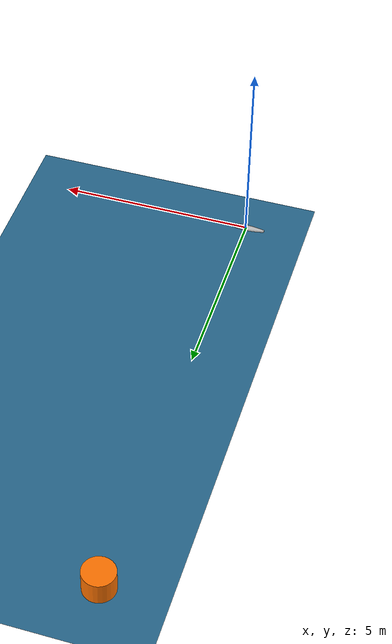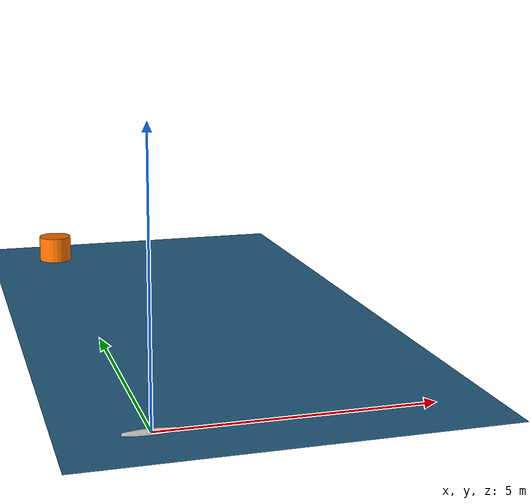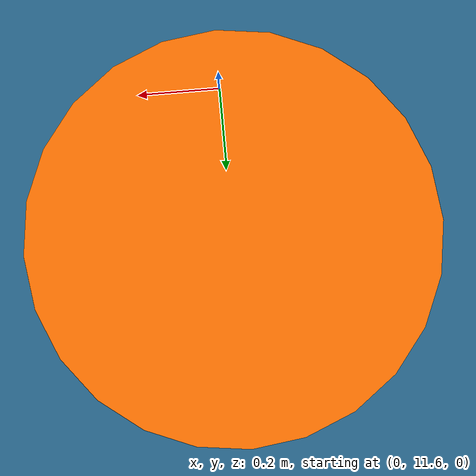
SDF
<?xml version="1.0"?>
<sdf version="1.7">
  <world name="lotusim">
    <scene>
      <ambient>1.0 1.0 1.0</ambient>
      <background>0.55 0.7 0.9</background>
      <grid>false</grid>
    </scene>

    <physics type="ode">
      <max_step_size>0.05</max_step_size>
      <real_time_factor>1</real_time_factor>
      <real_time_update_rate>20</real_time_update_rate>
    </physics>

    <spherical_coordinates>
      <surface_model>EARTH_WGS84</surface_model>
      <world_frame_orientation>ENU</world_frame_orientation>
      <latitude_deg>1.2421</latitude_deg>
      <longitude_deg>103.7198</longitude_deg>
      <elevation>0</elevation>
      <heading_deg>0</heading_deg>
    </spherical_coordinates>

    <gravity>0 0 0</gravity>

    <plugin filename="physics_interface_plugin"
            name="lotusim::gazebo::PhysicsInterfacePlugin"/>
    <plugin filename="entity_manager_plugin"
            name="lotusim::gazebo::EntityManager"/>
    <plugin filename="gz-sim-scene-broadcaster-system"
            name="gz::sim::systems::SceneBroadcaster"/>
    <plugin filename="gz-sim-sensors-system"
            name="gz::sim::systems::Sensors">
      <render_engine>ogre2</render_engine>
      <background_color>0.55 0.7 0.9</background_color>
    </plugin>

    <light type="directional" name="sun">
      <cast_shadows>true</cast_shadows>
      <pose>0 0 10 0 0 0</pose>
      <diffuse>0.95 0.95 0.95 1</diffuse>
      <specular>0.3 0.3 0.3 1</specular>
      <direction>-0.4 0.3 -0.9</direction>
    </light>

    <!-- Flat sea surface (visual only). -->
    <model name="sea">
      <static>true</static>
      <link name="surface">
        <visual name="surface">
          <geometry>
            <plane><normal>0 0 1</normal><size>200 200</size></plane>
          </geometry>
          <material>
            <ambient>0.10 0.30 0.45 1</ambient>
            <diffuse>0.15 0.40 0.55 1</diffuse>
            <specular>0.2 0.2 0.2 1</specular>
          </material>
        </visual>
      </link>
    </model>

    <!-- Race mark (buoy) at the controller's mark (0,12). -->
    <model name="mark">
      <static>true</static>
      <pose>0 12 0 0 0 0</pose>
      <link name="buoy">
        <visual name="buoy">
          <geometry><cylinder><radius>0.4</radius><length>1.2</length></cylinder></geometry>
          <material>
            <ambient>0.9 0.35 0.0 1</ambient>
            <diffuse>1.0 0.45 0.0 1</diffuse>
          </material>
        </visual>
      </link>
    </model>

    <!-- Offscreen top-down camera: above the course centre, looking straight
         down (pitch +90deg so the camera +X view axis points to -Z). Frames are
         saved to /lab/_offline/frames/. -->
    <model name="cam_rig">
      <static>true</static>
      <pose>7.5 7.5 30 0 1.5708 1.5708</pose>
      <link name="cam_link">
        <sensor name="topcam" type="camera">
          <always_on>1</always_on>
          <update_rate>1.5</update_rate>
          <topic>topcam</topic>
          <camera>
            <horizontal_fov>1.15</horizontal_fov>
            <image><width>840</width><height>840</height></image>
            <clip><near>0.2</near><far>200</far></clip>
            <save enabled="true"><path>/lab/_offline/frames</path></save>
          </camera>
        </sensor>
      </link>
    </model>

    <include>
      <uri>model://focus_v2</uri>
      <name>focus_v2</name>
      <pose>0 0 0 0 0 0</pose>
      <lotus_param>
        <physics_engine_interface>
          <surface>
            <connection_type>XDynWebSocket</connection_type>
            <uri>ws://127.0.0.1:12345</uri>
            <control_surfaces>
              <sail>mainsail(sheet)</sail>
              <rudder>rudder(helm)</rudder>
            </control_surfaces>
          </surface>
          <init_state>Surface</init_state>
        </physics_engine_interface>
      </lotus_param>
    </include>
  </world>
</sdf>

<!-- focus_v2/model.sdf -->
<sdf version="1.10">
  <model name="focus_v2">
    <!-- Physics is provided by the external xdyn co-simulation (see focus_v2.yaml);
         Gazebo only carries the visual + a coarse collision box. -->
    <link name="base_link">
      <visual name="visual">
        <!-- OBJ renders in the Gazebo GUI (the Blender COLLADA loader fails
             silently in gz-common). Mesh is modelled bow on +Y to match the
             vessel advance axis in the link frame. -->
        <geometry>
          <mesh>
            <uri>model://focus_v2/meshes/focus_v2.obj</uri>
          </mesh>
        </geometry>
      </visual>

      <collision name="base_collision">
        <geometry>
          <box>
            <size>0.17 0.995 0.13</size>
          </box>
        </geometry>
      </collision>
    </link>
  </model>
</sdf>
